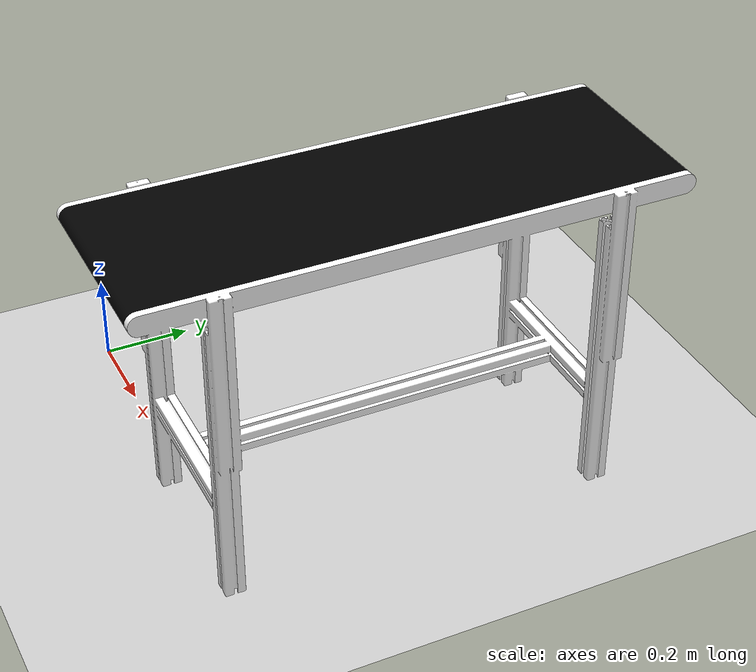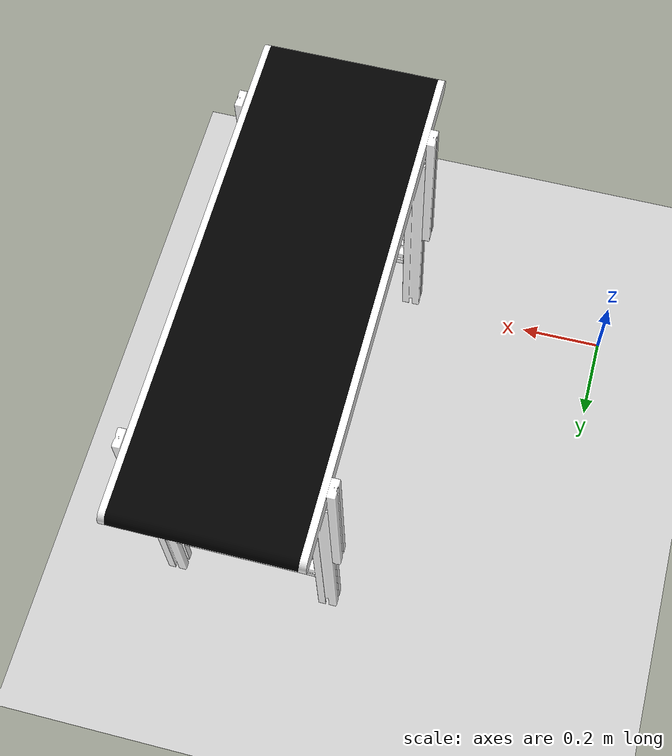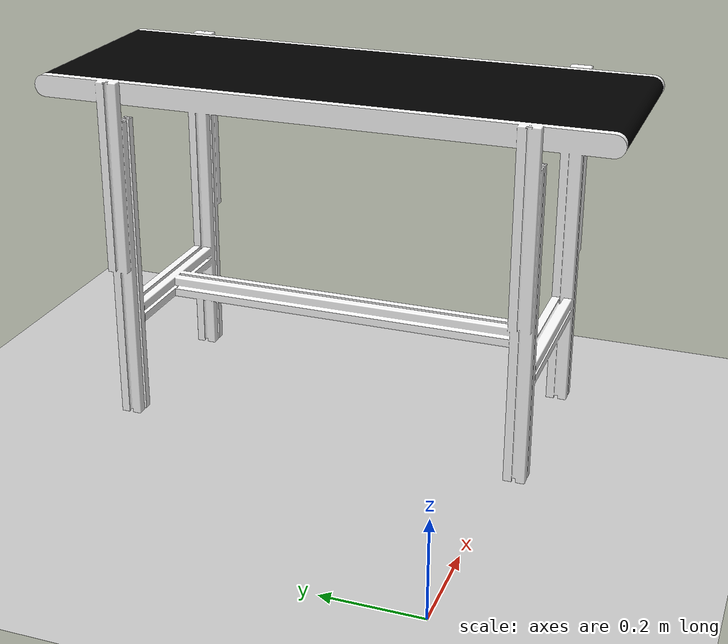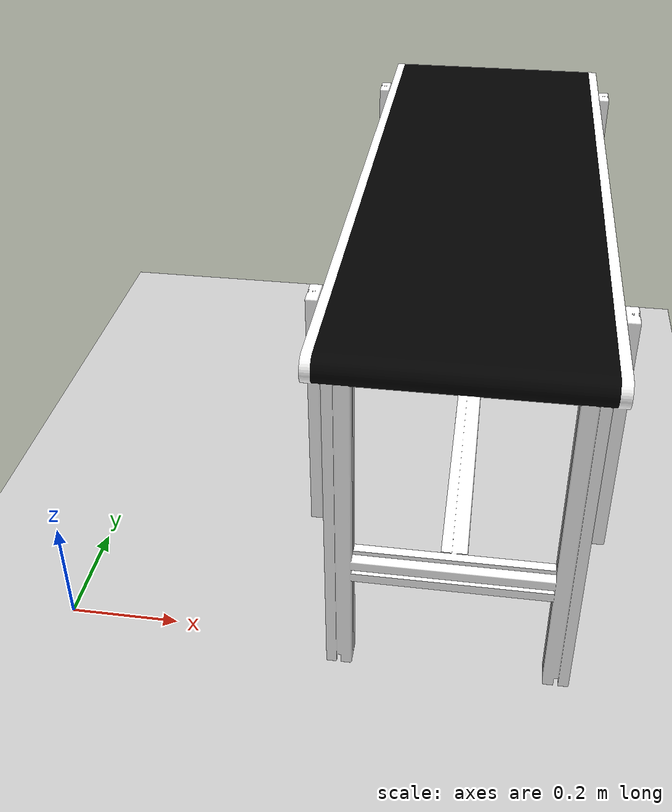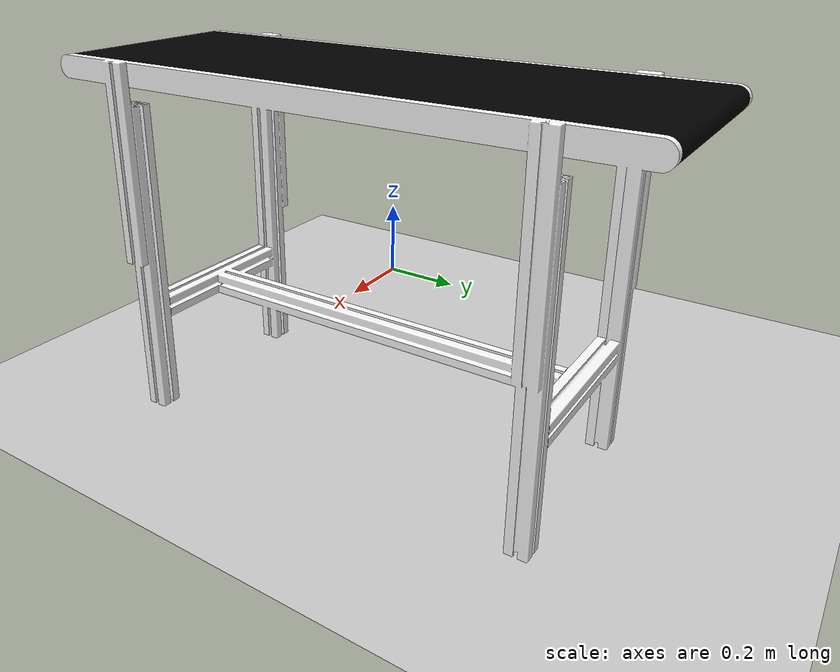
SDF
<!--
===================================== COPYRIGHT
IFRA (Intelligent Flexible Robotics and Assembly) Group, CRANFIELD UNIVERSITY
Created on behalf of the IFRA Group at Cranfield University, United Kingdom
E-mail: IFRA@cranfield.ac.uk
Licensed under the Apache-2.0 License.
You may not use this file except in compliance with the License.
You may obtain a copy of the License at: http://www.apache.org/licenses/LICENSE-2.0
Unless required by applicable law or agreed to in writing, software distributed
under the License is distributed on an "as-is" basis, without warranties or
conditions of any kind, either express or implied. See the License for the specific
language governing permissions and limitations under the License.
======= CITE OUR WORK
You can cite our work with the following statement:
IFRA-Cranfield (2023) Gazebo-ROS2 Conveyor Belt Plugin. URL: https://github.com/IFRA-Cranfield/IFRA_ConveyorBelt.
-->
<?xml version="1.0" ?>

<sdf version="1.4">

  <world name="default">

    <!-- WORLD COMPONENTS: STANDARD -->

    <gravity>0 0 -9.8</gravity>

    <include>
      <uri>model://ground_plane</uri>
    </include>

    <include>
      <uri>model://sun</uri>
    </include>

    <scene>
      <shadows>0</shadows>
    </scene>

    <!-- Insert Conveyor Belt -->
    <include>
      <name>conveyor_belt</name>
      <pose>0.7 0.4 0 0 0 0</pose>
      <uri>model://conveyor_belt</uri>
    </include>

    <plugin name="gazebo_link_attacher" filename="libgazebo_link_attacher.so"/>
    <plugin name="gazebo_ros_init" filename="libgazebo_ros_init.so">
    <ros>
    </ros>
    </plugin>

  </world>

</sdf>

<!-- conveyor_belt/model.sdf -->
<sdf version="1.9">

  <model name="conveyor_belt">

    <static>true</static>

    <link name="link">

      <pose>0 0 0 0 0 0</pose>

      <visual name="visual">

        <pose>0 0 0 0 0 0</pose>

        <geometry>
          <mesh>
            <uri>meshes/conveyor_belt.dae</uri>
          </mesh>
        </geometry>

      </visual>

      <collision name="collision">

        <pose>0 0 0.71 0 0 0</pose>

        <geometry>
          <box>
            <size>0.50 1.20 0.055</size>
          </box>
        </geometry>

        <surface>

          <contact>
            <ode>
              <kp>100000</kp>
              <kd>10</kd>
              <min_depth>0.001</min_depth>
              <max_vel>1.0</max_vel>
            </ode>
          </contact>

          <friction>
            <ode>

              <!--
                La cinta se mueve en el eje Y local.
              -->

              <fdir1>1 0 0</fdir1>

              <mu>2.0</mu>

              <mu2>0.5</mu2>

            </ode>
          </friction>

        </surface>

      </collision>

    </link>

    <!-- TRACK CONTROLLER                                       -->

    <plugin
      filename="gz-sim-track-controller-system"
      name="gz::sim::systems::TrackController">

      <link>link</link>

      <track_orientation>0 0 1.57079632679</track_orientation>

      <min_velocity>-1.0</min_velocity>

      <max_velocity>1.0</max_velocity>

    </plugin>

  </model>

</sdf>
